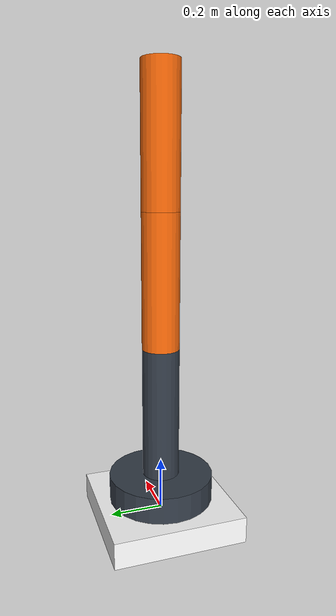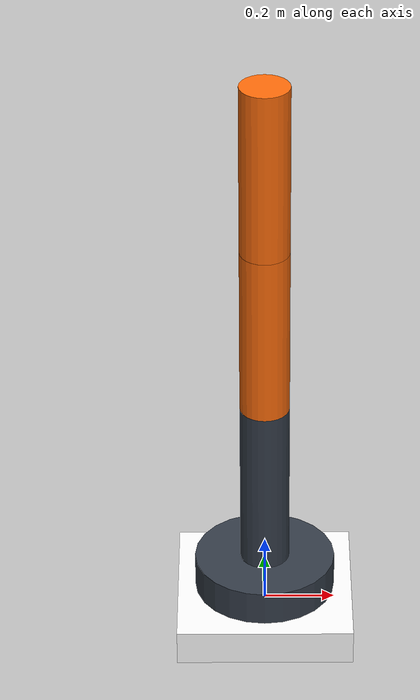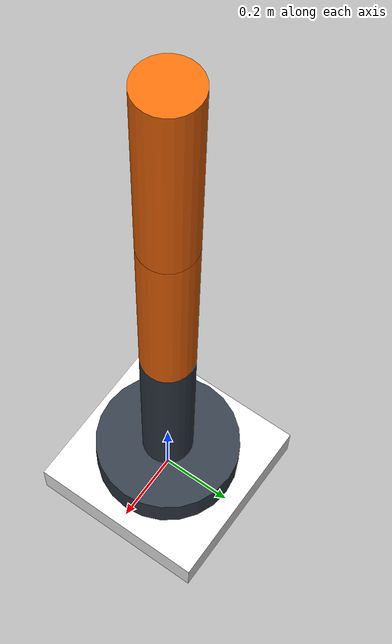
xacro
<?xml version="1.0" ?>
<robot name="cube" xmlns:xacro="http://www.ros.org/wiki/xacro">
  <material name="black">
    <color rgba="0.0 0.0 0.0 1.0"/>
  </material>
  <material name="blue">
    <color rgba="0.203125 0.23828125 0.28515625 1.0"/>
  </material>
  <material name="green">
    <color rgba="0.0 0.8 0.0 1.0"/>
  </material>
  <material name="grey">
    <color rgba="0.2 0.2 0.2 1.0"/>
  </material>
  <material name="orange">
    <color rgba="1.0 0.423529411765 0.0392156862745 1.0"/>
  </material>
  <material name="brown">
    <color rgba="0.870588235294 0.811764705882 0.764705882353 1.0"/>
  </material>
  <material name="red">
    <color rgba="0.80078125 0.12890625 0.1328125 1.0"/>
  </material>
  <material name="white">
    <color rgba="1.0 1.0 1.0 1.0"/>
  </material>

  <gazebo reference="base">
    <material>Gazebo/White</material>
  </gazebo>
  <gazebo reference="first_link">
    <material>Gazebo/Blue</material>
  </gazebo>
  <gazebo reference="fourth_link">
    <material>Gazebo/Orange</material>
  </gazebo>

  <gazebo>
 <gazebo>
  <plugin name="gazebo_ros_control" filename="libgazebo_ros_control.so">
    <robotNamespace>/cube</robotNamespace>
  </plugin>
</gazebo>
  </gazebo>
 <transmission name="tran1">
    <type>transmission_interface/SimpleTransmission</type>
    <joint name="joint1">
      <hardwareInterface>EffortJointInterface</hardwareInterface>
    </joint>
    <actuator name="motor1">
      <hardwareInterface>EffortJointInterface</hardwareInterface>
      <mechanicalReduction>1</mechanicalReduction>
    </actuator>
  </transmission>

  <transmission name="tran2">
    <type>transmission_interface/SimpleTransmission</type>
    <joint name="joint3">
      <hardwareInterface>EffortJointInterface</hardwareInterface>
    </joint>
    <actuator name="motor2">
      <hardwareInterface>EffortJointInterface</hardwareInterface>
      <mechanicalReduction>1</mechanicalReduction>
    </actuator>
  </transmission>

  <link name="base">
    <!-- pose and inertial -->
    <pose>0 0 0 0 0 0</pose>
    <inertial>
      <mass value="5"/>
      <origin rpy="0 0 0" xyz="0 0 0"/>
      <inertia ixx="0.0395416666667" ixy="0" ixz="0" iyy="0.106208333333" iyz="0" izz="0.106208333333"/>
    </inertial>
    <!-- body -->
    <collision name="collision_chassis">
      <geometry>
        <box size="0.5 0.5 0.1"/>
      </geometry>
    </collision>
    <visual>
      <origin rpy="0 0 0" xyz="0 0 0"/>
      <geometry>
        <box size="0.5 0.5 0.1"/>
      </geometry>
      <material name="white"/>
    </visual>
  </link>

 <link name="first_link">
    <inertial>
      <mass value="0.2"/>
      <!-- origin rpy="0 1.5707 1.5707" xyz="0 0 0"-->
      <inertia ixx="0.000526666666667" ixy="0" ixz="0" iyy="0.000526666666667" iyz="0" izz="0.001"/>
    </inertial>
    <collision name="first_link_collision">
      <origin rpy="0 0 1.5707" xyz="0 0 .05"/>
      <geometry>
        <cylinder length="0.1" radius="0.2"/>
      </geometry>
    </collision>
    <visual name="first_link_visual">
      <origin rpy="0 0 0" xyz="0 0 .05"/>
      <geometry>
        <cylinder length="0.1" radius="0.2"/>
      </geometry>
	<material name="blue"/>
    </visual>
  </link>

<joint name="joint1" type="revolute">
    <parent link="base"/>
    <child link="first_link"/>
    <origin xyz="0 0 .05" rpy="0 0 0"/>
    <limit lower="-3.1416" upper="3.1416" effort="1000" velocity=".5"/>
    <axis xyz="0 0 1"/>
</joint>

<link name="second_link">
    <inertial>
      <mass value="0.2"/>
      <origin rpy="0 1.5707 1.5707" xyz="0 0 0"/>
      <inertia ixx="0.000526666666667" ixy="0" ixz="0" iyy="0.000526666666667" iyz="0" izz="0.001"/>
    </inertial>
    <collision name="second_link_collision">
      <origin rpy="0 0 1.5707" xyz="0 0 .1"/>
      <geometry>
        <cylinder length="0.5" radius="0.07"/>
      </geometry>
    </collision>
    <visual name="second_link_visual">
      <origin rpy="0 0 1.5707" xyz="0 0 .1"/>
      <geometry>
        <cylinder length="0.5" radius="0.07"/>
      </geometry>
	<material name="blue"/>
    </visual>
  </link>

<joint name="joint2" type="fixed">
    <parent link="first_link"/>
    <child link="second_link"/>
    <origin xyz="0 0 .25"/>
</joint>

 <link name="third_link">
    <inertial>
      <mass value="0.2"/>
      <origin rpy="0 0 1.5707" xyz="0 0 0"/>
      <inertia ixx="0.000526666666667" ixy="0" ixz="0" iyy="0.000526666666667" iyz="0" izz="0.001"/>
    </inertial>
    <collision name="second_link_collision">
      <origin rpy="0 0 1.5707" xyz="0 0 .25"/>
      <geometry>
        <cylinder length="0.5" radius="0.07"/>
      </geometry>
    </collision>
    <visual name="second_link_visual">
      <origin rpy="0 0 1.5707" xyz="0 0 .25"/>
      <geometry>
        <cylinder length="0.5" radius="0.07"/>
      </geometry>
	<material name="orange"/>
    </visual>
  </link>

 <joint name="joint3" type="revolute">
    <parent link="second_link"/>
    <child link="third_link"/>
    <origin xyz="0 0 .35" rpy="0 0 1.5707"/>
    <limit lower="-1.5707" upper="1.5707" effort="100" velocity="3"/>
    <axis xyz="0 1 0"/>
</joint>

<link name="fourth_link">
    <inertial>
      <mass value="0.2"/>
      <origin rpy="0 0 1.5707" xyz="0 0 0"/>
      <inertia ixx="0.000526666666667" ixy="0" ixz="0" iyy="0.000526666666667" iyz="0" izz="0.001"/>
    </inertial>
    <collision name="fourth_link_collision">
      <origin rpy="0 0 1.5707" xyz="0 0 .25"/>
      <geometry>
        <cylinder length="0.5" radius="0.07"/>
      </geometry>
    </collision>
    <visual name="fourth_link_visual">
      <origin rpy="0 0 1.5707" xyz="0 0 .25"/>
      <geometry>
        <cylinder length="0.5" radius="0.07"/>
      </geometry>
	<material name="orange"/>
    </visual>
  </link>

<joint name="joint4" type="revolute">
    <parent link="third_link"/>
    <child link="fourth_link"/>
    <origin xyz="0 0 .5" rpy="0 0 1.5707"/>
    <limit lower="-1.5707" upper="1.5707" effort="100" velocity="3"/>
    <axis xyz="1 0 0"/>
</joint>

 </robot>
